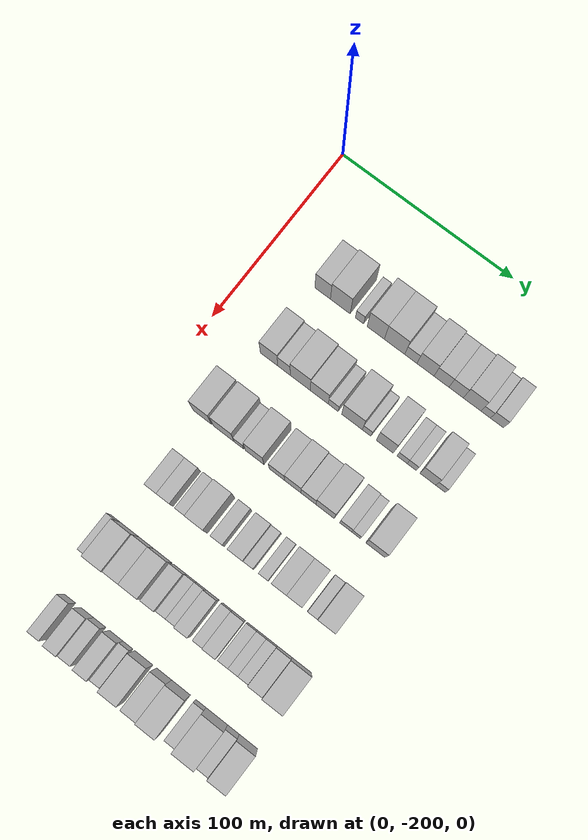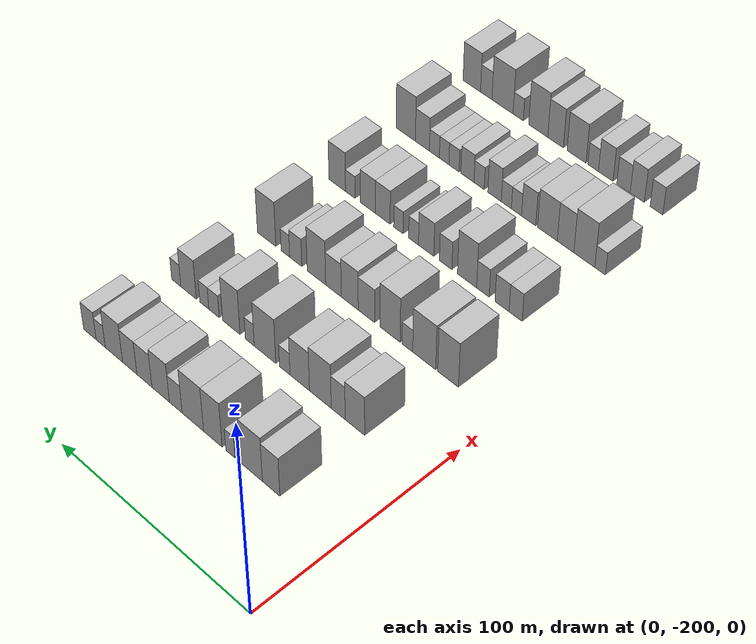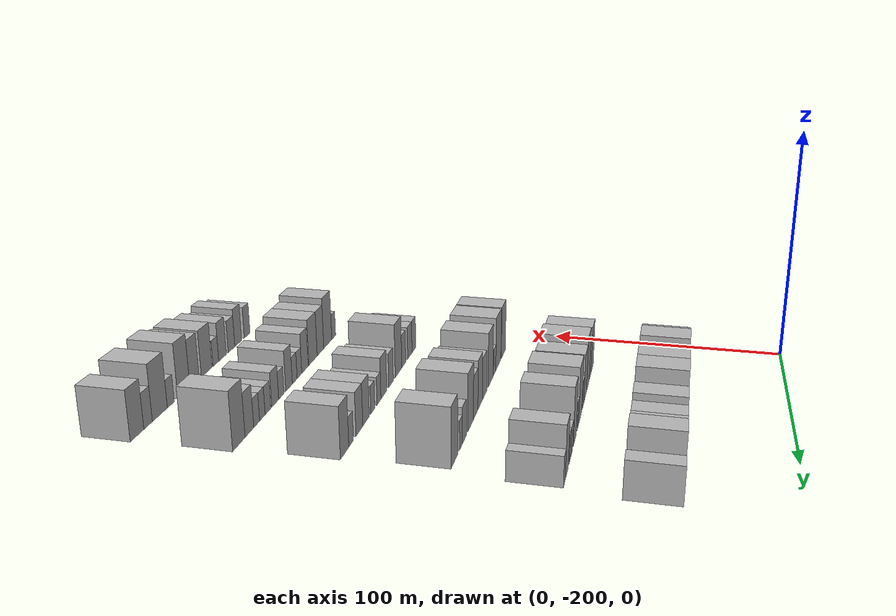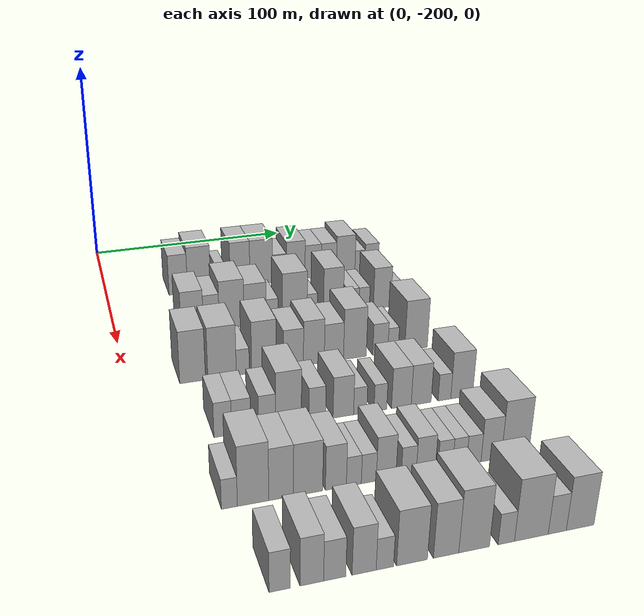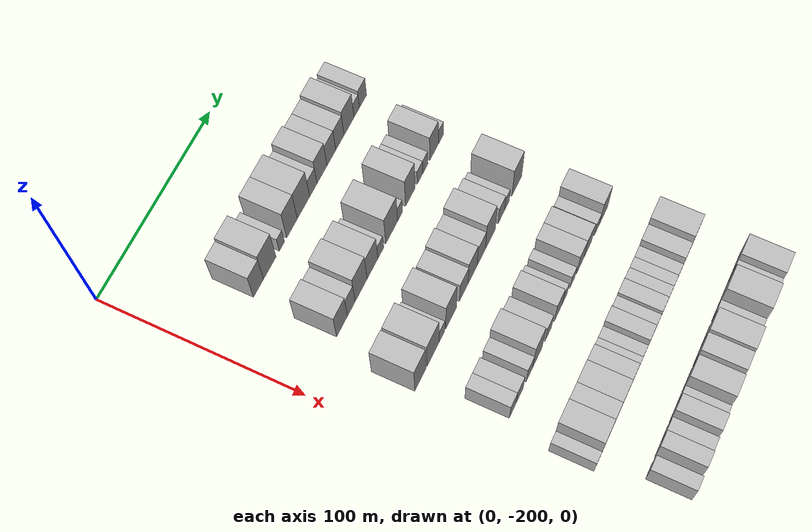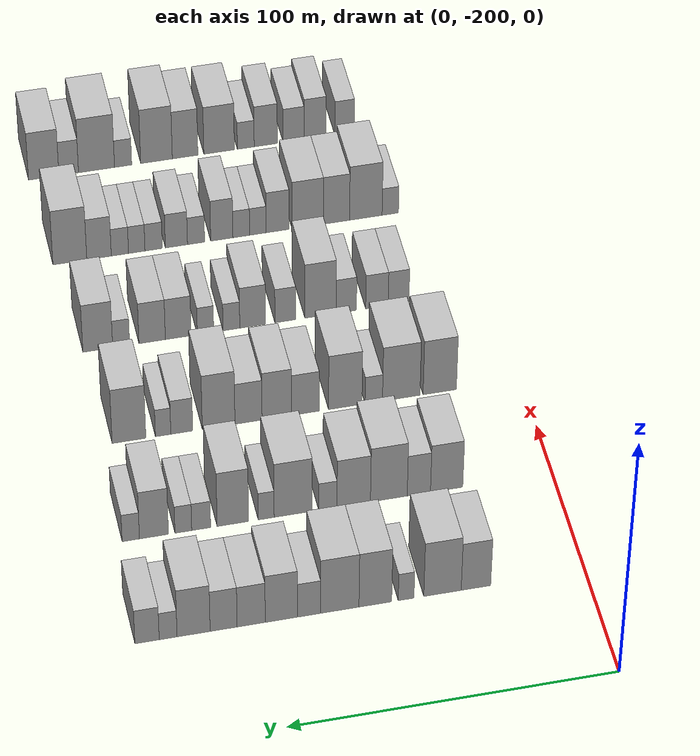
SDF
<sdf version="1.6">
 <world name="default">
  <model name="building_47">
   <static>1</static>
   <pose>50.0000 -166.2296 0 0.000000 0.000000 0.000000</pose>
   <link name="link">
    <pose>0 0 10.50 0 0 0</pose>
    <collision name="collision"><geometry><box><size>20.0000 9.0681 21.0000</size></box></geometry></collision>
    <visual name="visual">
     <cast_shadows>0</cast_shadows>
     <geometry><box><size>20.0000 9.0681 21.0000</size></box></geometry>
     <material>
      <script>
       <uri>model://HANNAS_wall/materials/scripts</uri>
       <uri>model://HANNAS_wall/materials/textures</uri>
       <name>vrc/HANNAS_wall</name>
      </script>
     </material>
    </visual>
   </link>
  </model>
  <model name="building_48">
   <static>1</static>
   <pose>50.0000 -155.9535 0 0.000000 0.000000 0.000000</pose>
   <link name="link">
    <pose>0 0 12.00 0 0 0</pose>
    <collision name="collision"><geometry><box><size>20.0000 11.4841 24.0000</size></box></geometry></collision>
    <visual name="visual">
     <cast_shadows>0</cast_shadows>
     <geometry><box><size>20.0000 11.4841 24.0000</size></box></geometry>
     <material>
      <script>
       <uri>model://HANNAS_wall/materials/scripts</uri>
       <uri>model://HANNAS_wall/materials/textures</uri>
       <name>vrc/HANNAS_wall</name>
      </script>
     </material>
    </visual>
   </link>
  </model>
  <model name="building_49">
   <static>1</static>
   <pose>50.0000 -144.7946 0 0.000000 0.000000 0.000000</pose>
   <link name="link">
    <pose>0 0 6.00 0 0 0</pose>
    <collision name="collision"><geometry><box><size>20.0000 4.8336 12.0000</size></box></geometry></collision>
    <visual name="visual">
     <cast_shadows>0</cast_shadows>
     <geometry><box><size>20.0000 4.8336 12.0000</size></box></geometry>
     <material>
      <script>
       <uri>model://HANNAS_wall/materials/scripts</uri>
       <uri>model://HANNAS_wall/materials/textures</uri>
       <name>vrc/HANNAS_wall</name>
      </script>
     </material>
    </visual>
   </link>
  </model>
  <model name="building_50">
   <static>1</static>
   <pose>50.0000 -135.3790 0 0.000000 0.000000 0.000000</pose>
   <link name="link">
    <pose>0 0 12.00 0 0 0</pose>
    <collision name="collision"><geometry><box><size>20.0000 9.9977 24.0000</size></box></geometry></collision>
    <visual name="visual">
     <cast_shadows>0</cast_shadows>
     <geometry><box><size>20.0000 9.9977 24.0000</size></box></geometry>
     <material>
      <script>
       <uri>model://HANNAS_wall/materials/scripts</uri>
       <uri>model://HANNAS_wall/materials/textures</uri>
       <name>vrc/HANNAS_wall</name>
      </script>
     </material>
    </visual>
   </link>
  </model>
  <model name="building_51">
   <static>1</static>
   <pose>50.0000 -124.5223 0 0.000000 0.000000 0.000000</pose>
   <link name="link">
    <pose>0 0 12.00 0 0 0</pose>
    <collision name="collision"><geometry><box><size>20.0000 11.7156 24.0000</size></box></geometry></collision>
    <visual name="visual">
     <cast_shadows>0</cast_shadows>
     <geometry><box><size>20.0000 11.7156 24.0000</size></box></geometry>
     <material>
      <script>
       <uri>model://HANNAS_wall/materials/scripts</uri>
       <uri>model://HANNAS_wall/materials/textures</uri>
       <name>vrc/HANNAS_wall</name>
      </script>
     </material>
    </visual>
   </link>
  </model>
  <model name="building_52">
   <static>1</static>
   <pose>50.0000 -115.1281 0 0.000000 0.000000 0.000000</pose>
   <link name="link">
    <pose>0 0 7.50 0 0 0</pose>
    <collision name="collision"><geometry><box><size>20.0000 7.0728 15.0000</size></box></geometry></collision>
    <visual name="visual">
     <cast_shadows>0</cast_shadows>
     <geometry><box><size>20.0000 7.0728 15.0000</size></box></geometry>
     <material>
      <script>
       <uri>model://HANNAS_wall/materials/scripts</uri>
       <uri>model://HANNAS_wall/materials/textures</uri>
       <name>vrc/HANNAS_wall</name>
      </script>
     </material>
    </visual>
   </link>
  </model>
  <model name="building_53">
   <static>1</static>
   <pose>50.0000 -106.7316 0 0.000000 0.000000 0.000000</pose>
   <link name="link">
    <pose>0 0 10.50 0 0 0</pose>
    <collision name="collision"><geometry><box><size>20.0000 9.7201 21.0000</size></box></geometry></collision>
    <visual name="visual">
     <cast_shadows>0</cast_shadows>
     <geometry><box><size>20.0000 9.7201 21.0000</size></box></geometry>
     <material>
      <script>
       <uri>model://HANNAS_wall/materials/scripts</uri>
       <uri>model://HANNAS_wall/materials/textures</uri>
       <name>vrc/HANNAS_wall</name>
      </script>
     </material>
    </visual>
   </link>
  </model>
  <model name="building_54">
   <static>1</static>
   <pose>50.0000 -97.6066 0 0.000000 0.000000 0.000000</pose>
   <link name="link">
    <pose>0 0 9.00 0 0 0</pose>
    <collision name="collision"><geometry><box><size>20.0000 8.5299 18.0000</size></box></geometry></collision>
    <visual name="visual">
     <cast_shadows>0</cast_shadows>
     <geometry><box><size>20.0000 8.5299 18.0000</size></box></geometry>
     <material>
      <script>
       <uri>model://HANNAS_wall/materials/scripts</uri>
       <uri>model://HANNAS_wall/materials/textures</uri>
       <name>vrc/HANNAS_wall</name>
      </script>
     </material>
    </visual>
   </link>
  </model>
  <model name="building_55">
   <static>1</static>
   <pose>50.0000 -89.2613 0 0.000000 0.000000 0.000000</pose>
   <link name="link">
    <pose>0 0 9.00 0 0 0</pose>
    <collision name="collision"><geometry><box><size>20.0000 8.1607 18.0000</size></box></geometry></collision>
    <visual name="visual">
     <cast_shadows>0</cast_shadows>
     <geometry><box><size>20.0000 8.1607 18.0000</size></box></geometry>
     <material>
      <script>
       <uri>model://HANNAS_wall/materials/scripts</uri>
       <uri>model://HANNAS_wall/materials/textures</uri>
       <name>vrc/HANNAS_wall</name>
      </script>
     </material>
    </visual>
   </link>
  </model>
  <model name="building_56">
   <static>1</static>
   <pose>50.0000 -80.1946 0 0.000000 0.000000 0.000000</pose>
   <link name="link">
    <pose>0 0 10.50 0 0 0</pose>
    <collision name="collision"><geometry><box><size>20.0000 9.9728 21.0000</size></box></geometry></collision>
    <visual name="visual">
     <cast_shadows>0</cast_shadows>
     <geometry><box><size>20.0000 9.9728 21.0000</size></box></geometry>
     <material>
      <script>
       <uri>model://HANNAS_wall/materials/scripts</uri>
       <uri>model://HANNAS_wall/materials/textures</uri>
       <name>vrc/HANNAS_wall</name>
      </script>
     </material>
    </visual>
   </link>
  </model>
  <model name="building_57">
   <static>1</static>
   <pose>50.0000 -72.5156 0 0.000000 0.000000 0.000000</pose>
   <link name="link">
    <pose>0 0 6.00 0 0 0</pose>
    <collision name="collision"><geometry><box><size>20.0000 5.3850 12.0000</size></box></geometry></collision>
    <visual name="visual">
     <cast_shadows>0</cast_shadows>
     <geometry><box><size>20.0000 5.3850 12.0000</size></box></geometry>
     <material>
      <script>
       <uri>model://HANNAS_wall/materials/scripts</uri>
       <uri>model://HANNAS_wall/materials/textures</uri>
       <name>vrc/HANNAS_wall</name>
      </script>
     </material>
    </visual>
   </link>
  </model>
  <model name="building_58">
   <static>1</static>
   <pose>50.0000 -66.1630 0 0.000000 0.000000 0.000000</pose>
   <link name="link">
    <pose>0 0 7.50 0 0 0</pose>
    <collision name="collision"><geometry><box><size>20.0000 7.3204 15.0000</size></box></geometry></collision>
    <visual name="visual">
     <cast_shadows>0</cast_shadows>
     <geometry><box><size>20.0000 7.3204 15.0000</size></box></geometry>
     <material>
      <script>
       <uri>model://HANNAS_wall/materials/scripts</uri>
       <uri>model://HANNAS_wall/materials/textures</uri>
       <name>vrc/HANNAS_wall</name>
      </script>
     </material>
    </visual>
   </link>
  </model>
  <model name="building_179">
   <static>1</static>
   <pose>90.0000 -166.6942 0 0.000000 0.000000 0.000000</pose>
   <link name="link">
    <pose>0 0 10.50 0 0 0</pose>
    <collision name="collision"><geometry><box><size>20.0000 10.1203 21.0000</size></box></geometry></collision>
    <visual name="visual">
     <cast_shadows>0</cast_shadows>
     <geometry><box><size>20.0000 10.1203 21.0000</size></box></geometry>
     <material>
      <script>
       <uri>model://HANNAS_wall/materials/scripts</uri>
       <uri>model://HANNAS_wall/materials/textures</uri>
       <name>vrc/HANNAS_wall</name>
      </script>
     </material>
    </visual>
   </link>
  </model>
  <model name="building_180">
   <static>1</static>
   <pose>90.0000 -157.9879 0 0.000000 0.000000 0.000000</pose>
   <link name="link">
    <pose>0 0 9.00 0 0 0</pose>
    <collision name="collision"><geometry><box><size>20.0000 7.2924 18.0000</size></box></geometry></collision>
    <visual name="visual">
     <cast_shadows>0</cast_shadows>
     <geometry><box><size>20.0000 7.2924 18.0000</size></box></geometry>
     <material>
      <script>
       <uri>model://HANNAS_wall/materials/scripts</uri>
       <uri>model://HANNAS_wall/materials/textures</uri>
       <name>vrc/HANNAS_wall</name>
      </script>
     </material>
    </visual>
   </link>
  </model>
  <model name="building_181">
   <static>1</static>
   <pose>90.0000 -148.5981 0 0.000000 0.000000 0.000000</pose>
   <link name="link">
    <pose>0 0 12.00 0 0 0</pose>
    <collision name="collision"><geometry><box><size>20.0000 11.4873 24.0000</size></box></geometry></collision>
    <visual name="visual">
     <cast_shadows>0</cast_shadows>
     <geometry><box><size>20.0000 11.4873 24.0000</size></box></geometry>
     <material>
      <script>
       <uri>model://HANNAS_wall/materials/scripts</uri>
       <uri>model://HANNAS_wall/materials/textures</uri>
       <name>vrc/HANNAS_wall</name>
      </script>
     </material>
    </visual>
   </link>
  </model>
  <model name="building_182">
   <static>1</static>
   <pose>90.0000 -137.6364 0 0.000000 0.000000 0.000000</pose>
   <link name="link">
    <pose>0 0 10.50 0 0 0</pose>
    <collision name="collision"><geometry><box><size>20.0000 10.4361 21.0000</size></box></geometry></collision>
    <visual name="visual">
     <cast_shadows>0</cast_shadows>
     <geometry><box><size>20.0000 10.4361 21.0000</size></box></geometry>
     <material>
      <script>
       <uri>model://HANNAS_wall/materials/scripts</uri>
       <uri>model://HANNAS_wall/materials/textures</uri>
       <name>vrc/HANNAS_wall</name>
      </script>
     </material>
    </visual>
   </link>
  </model>
  <model name="building_183">
   <static>1</static>
   <pose>90.0000 -129.5683 0 0.000000 0.000000 0.000000</pose>
   <link name="link">
    <pose>0 0 6.00 0 0 0</pose>
    <collision name="collision"><geometry><box><size>20.0000 5.7002 12.0000</size></box></geometry></collision>
    <visual name="visual">
     <cast_shadows>0</cast_shadows>
     <geometry><box><size>20.0000 5.7002 12.0000</size></box></geometry>
     <material>
      <script>
       <uri>model://HANNAS_wall/materials/scripts</uri>
       <uri>model://HANNAS_wall/materials/textures</uri>
       <name>vrc/HANNAS_wall</name>
      </script>
     </material>
    </visual>
   </link>
  </model>
  <model name="building_184">
   <static>1</static>
   <pose>90.0000 -118.8099 0 0.000000 0.000000 0.000000</pose>
   <link name="link">
    <pose>0 0 12.00 0 0 0</pose>
    <collision name="collision"><geometry><box><size>20.0000 11.8165 24.0000</size></box></geometry></collision>
    <visual name="visual">
     <cast_shadows>0</cast_shadows>
     <geometry><box><size>20.0000 11.8165 24.0000</size></box></geometry>
     <material>
      <script>
       <uri>model://HANNAS_wall/materials/scripts</uri>
       <uri>model://HANNAS_wall/materials/textures</uri>
       <name>vrc/HANNAS_wall</name>
      </script>
     </material>
    </visual>
   </link>
  </model>
  <model name="building_185">
   <static>1</static>
   <pose>90.0000 -110.4300 0 0.000000 0.000000 0.000000</pose>
   <link name="link">
    <pose>0 0 6.00 0 0 0</pose>
    <collision name="collision"><geometry><box><size>20.0000 4.9433 12.0000</size></box></geometry></collision>
    <visual name="visual">
     <cast_shadows>0</cast_shadows>
     <geometry><box><size>20.0000 4.9433 12.0000</size></box></geometry>
     <material>
      <script>
       <uri>model://HANNAS_wall/materials/scripts</uri>
       <uri>model://HANNAS_wall/materials/textures</uri>
       <name>vrc/HANNAS_wall</name>
      </script>
     </material>
    </visual>
   </link>
  </model>
  <model name="building_186">
   <static>1</static>
   <pose>90.0000 -100.1006 0 0.000000 0.000000 0.000000</pose>
   <link name="link">
    <pose>0 0 12.00 0 0 0</pose>
    <collision name="collision"><geometry><box><size>20.0000 9.7156 24.0000</size></box></geometry></collision>
    <visual name="visual">
     <cast_shadows>0</cast_shadows>
     <geometry><box><size>20.0000 9.7156 24.0000</size></box></geometry>
     <material>
      <script>
       <uri>model://HANNAS_wall/materials/scripts</uri>
       <uri>model://HANNAS_wall/materials/textures</uri>
       <name>vrc/HANNAS_wall</name>
      </script>
     </material>
    </visual>
   </link>
  </model>
  <model name="building_187">
   <static>1</static>
   <pose>90.0000 -90.3222 0 0.000000 0.000000 0.000000</pose>
   <link name="link">
    <pose>0 0 6.00 0 0 0</pose>
    <collision name="collision"><geometry><box><size>20.0000 5.8412 12.0000</size></box></geometry></collision>
    <visual name="visual">
     <cast_shadows>0</cast_shadows>
     <geometry><box><size>20.0000 5.8412 12.0000</size></box></geometry>
     <material>
      <script>
       <uri>model://HANNAS_wall/materials/scripts</uri>
       <uri>model://HANNAS_wall/materials/textures</uri>
       <name>vrc/HANNAS_wall</name>
      </script>
     </material>
    </visual>
   </link>
  </model>
  <model name="building_188">
   <static>1</static>
   <pose>90.0000 -84.8176 0 0.000000 0.000000 0.000000</pose>
   <link name="link">
    <pose>0 0 6.00 0 0 0</pose>
    <collision name="collision"><geometry><box><size>20.0000 5.1679 12.0000</size></box></geometry></collision>
    <visual name="visual">
     <cast_shadows>0</cast_shadows>
     <geometry><box><size>20.0000 5.1679 12.0000</size></box></geometry>
     <material>
      <script>
       <uri>model://HANNAS_wall/materials/scripts</uri>
       <uri>model://HANNAS_wall/materials/textures</uri>
       <name>vrc/HANNAS_wall</name>
      </script>
     </material>
    </visual>
   </link>
  </model>
  <model name="building_189">
   <static>1</static>
   <pose>90.0000 -75.7755 0 0.000000 0.000000 0.000000</pose>
   <link name="link">
    <pose>0 0 10.50 0 0 0</pose>
    <collision name="collision"><geometry><box><size>20.0000 8.9164 21.0000</size></box></geometry></collision>
    <visual name="visual">
     <cast_shadows>0</cast_shadows>
     <geometry><box><size>20.0000 8.9164 21.0000</size></box></geometry>
     <material>
      <script>
       <uri>model://HANNAS_wall/materials/scripts</uri>
       <uri>model://HANNAS_wall/materials/textures</uri>
       <name>vrc/HANNAS_wall</name>
      </script>
     </material>
    </visual>
   </link>
  </model>
  <model name="building_190">
   <static>1</static>
   <pose>90.0000 -68.6545 0 0.000000 0.000000 0.000000</pose>
   <link name="link">
    <pose>0 0 6.00 0 0 0</pose>
    <collision name="collision"><geometry><box><size>20.0000 5.3256 12.0000</size></box></geometry></collision>
    <visual name="visual">
     <cast_shadows>0</cast_shadows>
     <geometry><box><size>20.0000 5.3256 12.0000</size></box></geometry>
     <material>
      <script>
       <uri>model://HANNAS_wall/materials/scripts</uri>
       <uri>model://HANNAS_wall/materials/textures</uri>
       <name>vrc/HANNAS_wall</name>
      </script>
     </material>
    </visual>
   </link>
  </model>
  <model name="building_309">
   <static>1</static>
   <pose>130.0000 -173.9732 0 0.000000 0.000000 0.000000</pose>
   <link name="link">
    <pose>0 0 12.00 0 0 0</pose>
    <collision name="collision"><geometry><box><size>20.0000 10.6619 24.0000</size></box></geometry></collision>
    <visual name="visual">
     <cast_shadows>0</cast_shadows>
     <geometry><box><size>20.0000 10.6619 24.0000</size></box></geometry>
     <material>
      <script>
       <uri>model://HANNAS_wall/materials/scripts</uri>
       <uri>model://HANNAS_wall/materials/textures</uri>
       <name>vrc/HANNAS_wall</name>
      </script>
     </material>
    </visual>
   </link>
  </model>
  <model name="building_310">
   <static>1</static>
   <pose>130.0000 -161.6548 0 0.000000 0.000000 0.000000</pose>
   <link name="link">
    <pose>0 0 12.00 0 0 0</pose>
    <collision name="collision"><geometry><box><size>20.0000 11.9749 24.0000</size></box></geometry></collision>
    <visual name="visual">
     <cast_shadows>0</cast_shadows>
     <geometry><box><size>20.0000 11.9749 24.0000</size></box></geometry>
     <material>
      <script>
       <uri>model://HANNAS_wall/materials/scripts</uri>
       <uri>model://HANNAS_wall/materials/textures</uri>
       <name>vrc/HANNAS_wall</name>
      </script>
     </material>
    </visual>
   </link>
  </model>
  <model name="building_311">
   <static>1</static>
   <pose>130.0000 -152.8914 0 0.000000 0.000000 0.000000</pose>
   <link name="link">
    <pose>0 0 6.00 0 0 0</pose>
    <collision name="collision"><geometry><box><size>20.0000 5.5519 12.0000</size></box></geometry></collision>
    <visual name="visual">
     <cast_shadows>0</cast_shadows>
     <geometry><box><size>20.0000 5.5519 12.0000</size></box></geometry>
     <material>
      <script>
       <uri>model://HANNAS_wall/materials/scripts</uri>
       <uri>model://HANNAS_wall/materials/textures</uri>
       <name>vrc/HANNAS_wall</name>
      </script>
     </material>
    </visual>
   </link>
  </model>
  <model name="building_312">
   <static>1</static>
   <pose>130.0000 -143.7987 0 0.000000 0.000000 0.000000</pose>
   <link name="link">
    <pose>0 0 12.00 0 0 0</pose>
    <collision name="collision"><geometry><box><size>20.0000 10.6335 24.0000</size></box></geometry></collision>
    <visual name="visual">
     <cast_shadows>0</cast_shadows>
     <geometry><box><size>20.0000 10.6335 24.0000</size></box></geometry>
     <material>
      <script>
       <uri>model://HANNAS_wall/materials/scripts</uri>
       <uri>model://HANNAS_wall/materials/textures</uri>
       <name>vrc/HANNAS_wall</name>
      </script>
     </material>
    </visual>
   </link>
  </model>
  <model name="building_313">
   <static>1</static>
   <pose>130.0000 -131.0709 0 0.000000 0.000000 0.000000</pose>
   <link name="link">
    <pose>0 0 9.00 0 0 0</pose>
    <collision name="collision"><geometry><box><size>20.0000 8.8222 18.0000</size></box></geometry></collision>
    <visual name="visual">
     <cast_shadows>0</cast_shadows>
     <geometry><box><size>20.0000 8.8222 18.0000</size></box></geometry>
     <material>
      <script>
       <uri>model://HANNAS_wall/materials/scripts</uri>
       <uri>model://HANNAS_wall/materials/textures</uri>
       <name>vrc/HANNAS_wall</name>
      </script>
     </material>
    </visual>
   </link>
  </model>
  <model name="building_314">
   <static>1</static>
   <pose>130.0000 -122.0285 0 0.000000 0.000000 0.000000</pose>
   <link name="link">
    <pose>0 0 10.50 0 0 0</pose>
    <collision name="collision"><geometry><box><size>20.0000 9.2626 21.0000</size></box></geometry></collision>
    <visual name="visual">
     <cast_shadows>0</cast_shadows>
     <geometry><box><size>20.0000 9.2626 21.0000</size></box></geometry>
     <material>
      <script>
       <uri>model://HANNAS_wall/materials/scripts</uri>
       <uri>model://HANNAS_wall/materials/textures</uri>
       <name>vrc/HANNAS_wall</name>
      </script>
     </material>
    </visual>
   </link>
  </model>
  <model name="building_315">
   <static>1</static>
   <pose>130.0000 -113.1105 0 0.000000 0.000000 0.000000</pose>
   <link name="link">
    <pose>0 0 9.00 0 0 0</pose>
    <collision name="collision"><geometry><box><size>20.0000 8.5734 18.0000</size></box></geometry></collision>
    <visual name="visual">
     <cast_shadows>0</cast_shadows>
     <geometry><box><size>20.0000 8.5734 18.0000</size></box></geometry>
     <material>
      <script>
       <uri>model://HANNAS_wall/materials/scripts</uri>
       <uri>model://HANNAS_wall/materials/textures</uri>
       <name>vrc/HANNAS_wall</name>
      </script>
     </material>
    </visual>
   </link>
  </model>
  <model name="building_316">
   <static>1</static>
   <pose>130.0000 -103.6690 0 0.000000 0.000000 0.000000</pose>
   <link name="link">
    <pose>0 0 12.00 0 0 0</pose>
    <collision name="collision"><geometry><box><size>20.0000 10.3096 24.0000</size></box></geometry></collision>
    <visual name="visual">
     <cast_shadows>0</cast_shadows>
     <geometry><box><size>20.0000 10.3096 24.0000</size></box></geometry>
     <material>
      <script>
       <uri>model://HANNAS_wall/materials/scripts</uri>
       <uri>model://HANNAS_wall/materials/textures</uri>
       <name>vrc/HANNAS_wall</name>
      </script>
     </material>
    </visual>
   </link>
  </model>
  <model name="building_317">
   <static>1</static>
   <pose>130.0000 -92.0567 0 0.000000 0.000000 0.000000</pose>
   <link name="link">
    <pose>0 0 7.50 0 0 0</pose>
    <collision name="collision"><geometry><box><size>20.0000 6.9150 15.0000</size></box></geometry></collision>
    <visual name="visual">
     <cast_shadows>0</cast_shadows>
     <geometry><box><size>20.0000 6.9150 15.0000</size></box></geometry>
     <material>
      <script>
       <uri>model://HANNAS_wall/materials/scripts</uri>
       <uri>model://HANNAS_wall/materials/textures</uri>
       <name>vrc/HANNAS_wall</name>
      </script>
     </material>
    </visual>
   </link>
  </model>
  <model name="building_318">
   <static>1</static>
   <pose>130.0000 -86.1786 0 0.000000 0.000000 0.000000</pose>
   <link name="link">
    <pose>0 0 6.00 0 0 0</pose>
    <collision name="collision"><geometry><box><size>20.0000 4.8413 12.0000</size></box></geometry></collision>
    <visual name="visual">
     <cast_shadows>0</cast_shadows>
     <geometry><box><size>20.0000 4.8413 12.0000</size></box></geometry>
     <material>
      <script>
       <uri>model://HANNAS_wall/materials/scripts</uri>
       <uri>model://HANNAS_wall/materials/textures</uri>
       <name>vrc/HANNAS_wall</name>
      </script>
     </material>
    </visual>
   </link>
  </model>
  <model name="building_319">
   <static>1</static>
   <pose>130.0000 -75.4687 0 0.000000 0.000000 0.000000</pose>
   <link name="link">
    <pose>0 0 12.00 0 0 0</pose>
    <collision name="collision"><geometry><box><size>20.0000 10.5785 24.0000</size></box></geometry></collision>
    <visual name="visual">
     <cast_shadows>0</cast_shadows>
     <geometry><box><size>20.0000 10.5785 24.0000</size></box></geometry>
     <material>
      <script>
       <uri>model://HANNAS_wall/materials/scripts</uri>
       <uri>model://HANNAS_wall/materials/textures</uri>
       <name>vrc/HANNAS_wall</name>
      </script>
     </material>
    </visual>
   </link>
  </model>
  <model name="building_448">
   <static>1</static>
   <pose>170.0000 -169.9587 0 0.000000 0.000000 0.000000</pose>
   <link name="link">
    <pose>0 0 7.50 0 0 0</pose>
    <collision name="collision"><geometry><box><size>20.0000 6.7634 15.0000</size></box></geometry></collision>
    <visual name="visual">
     <cast_shadows>0</cast_shadows>
     <geometry><box><size>20.0000 6.7634 15.0000</size></box></geometry>
     <material>
      <script>
       <uri>model://HANNAS_wall/materials/scripts</uri>
       <uri>model://HANNAS_wall/materials/textures</uri>
       <name>vrc/HANNAS_wall</name>
      </script>
     </material>
    </visual>
   </link>
  </model>
  <model name="building_449">
   <static>1</static>
   <pose>170.0000 -162.9077 0 0.000000 0.000000 0.000000</pose>
   <link name="link">
    <pose>0 0 7.50 0 0 0</pose>
    <collision name="collision"><geometry><box><size>20.0000 7.3386 15.0000</size></box></geometry></collision>
    <visual name="visual">
     <cast_shadows>0</cast_shadows>
     <geometry><box><size>20.0000 7.3386 15.0000</size></box></geometry>
     <material>
      <script>
       <uri>model://HANNAS_wall/materials/scripts</uri>
       <uri>model://HANNAS_wall/materials/textures</uri>
       <name>vrc/HANNAS_wall</name>
      </script>
     </material>
    </visual>
   </link>
  </model>
  <model name="building_450">
   <static>1</static>
   <pose>170.0000 -152.9401 0 0.000000 0.000000 0.000000</pose>
   <link name="link">
    <pose>0 0 7.50 0 0 0</pose>
    <collision name="collision"><geometry><box><size>20.0000 6.5965 15.0000</size></box></geometry></collision>
    <visual name="visual">
     <cast_shadows>0</cast_shadows>
     <geometry><box><size>20.0000 6.5965 15.0000</size></box></geometry>
     <material>
      <script>
       <uri>model://HANNAS_wall/materials/scripts</uri>
       <uri>model://HANNAS_wall/materials/textures</uri>
       <name>vrc/HANNAS_wall</name>
      </script>
     </material>
    </visual>
   </link>
  </model>
  <model name="building_451">
   <static>1</static>
   <pose>170.0000 -144.5695 0 0.000000 0.000000 0.000000</pose>
   <link name="link">
    <pose>0 0 12.00 0 0 0</pose>
    <collision name="collision"><geometry><box><size>20.0000 10.1448 24.0000</size></box></geometry></collision>
    <visual name="visual">
     <cast_shadows>0</cast_shadows>
     <geometry><box><size>20.0000 10.1448 24.0000</size></box></geometry>
     <material>
      <script>
       <uri>model://HANNAS_wall/materials/scripts</uri>
       <uri>model://HANNAS_wall/materials/textures</uri>
       <name>vrc/HANNAS_wall</name>
      </script>
     </material>
    </visual>
   </link>
  </model>
  <model name="building_452">
   <static>1</static>
   <pose>170.0000 -133.1476 0 0.000000 0.000000 0.000000</pose>
   <link name="link">
    <pose>0 0 7.50 0 0 0</pose>
    <collision name="collision"><geometry><box><size>20.0000 6.6992 15.0000</size></box></geometry></collision>
    <visual name="visual">
     <cast_shadows>0</cast_shadows>
     <geometry><box><size>20.0000 6.6992 15.0000</size></box></geometry>
     <material>
      <script>
       <uri>model://HANNAS_wall/materials/scripts</uri>
       <uri>model://HANNAS_wall/materials/textures</uri>
       <name>vrc/HANNAS_wall</name>
      </script>
     </material>
    </visual>
   </link>
  </model>
  <model name="building_453">
   <static>1</static>
   <pose>170.0000 -122.6183 0 0.000000 0.000000 0.000000</pose>
   <link name="link">
    <pose>0 0 9.00 0 0 0</pose>
    <collision name="collision"><geometry><box><size>20.0000 8.3593 18.0000</size></box></geometry></collision>
    <visual name="visual">
     <cast_shadows>0</cast_shadows>
     <geometry><box><size>20.0000 8.3593 18.0000</size></box></geometry>
     <material>
      <script>
       <uri>model://HANNAS_wall/materials/scripts</uri>
       <uri>model://HANNAS_wall/materials/textures</uri>
       <name>vrc/HANNAS_wall</name>
      </script>
     </material>
    </visual>
   </link>
  </model>
  <model name="building_454">
   <static>1</static>
   <pose>170.0000 -115.7370 0 0.000000 0.000000 0.000000</pose>
   <link name="link">
    <pose>0 0 6.00 0 0 0</pose>
    <collision name="collision"><geometry><box><size>20.0000 5.4032 12.0000</size></box></geometry></collision>
    <visual name="visual">
     <cast_shadows>0</cast_shadows>
     <geometry><box><size>20.0000 5.4032 12.0000</size></box></geometry>
     <material>
      <script>
       <uri>model://HANNAS_wall/materials/scripts</uri>
       <uri>model://HANNAS_wall/materials/textures</uri>
       <name>vrc/HANNAS_wall</name>
      </script>
     </material>
    </visual>
   </link>
  </model>
  <model name="building_455">
   <static>1</static>
   <pose>170.0000 -107.3978 0 0.000000 0.000000 0.000000</pose>
   <link name="link">
    <pose>0 0 6.00 0 0 0</pose>
    <collision name="collision"><geometry><box><size>20.0000 5.2753 12.0000</size></box></geometry></collision>
    <visual name="visual">
     <cast_shadows>0</cast_shadows>
     <geometry><box><size>20.0000 5.2753 12.0000</size></box></geometry>
     <material>
      <script>
       <uri>model://HANNAS_wall/materials/scripts</uri>
       <uri>model://HANNAS_wall/materials/textures</uri>
       <name>vrc/HANNAS_wall</name>
      </script>
     </material>
    </visual>
   </link>
  </model>
  <model name="building_456">
   <static>1</static>
   <pose>170.0000 -98.6257 0 0.000000 0.000000 0.000000</pose>
   <link name="link">
    <pose>0 0 9.00 0 0 0</pose>
    <collision name="collision"><geometry><box><size>20.0000 8.2689 18.0000</size></box></geometry></collision>
    <visual name="visual">
     <cast_shadows>0</cast_shadows>
     <geometry><box><size>20.0000 8.2689 18.0000</size></box></geometry>
     <material>
      <script>
       <uri>model://HANNAS_wall/materials/scripts</uri>
       <uri>model://HANNAS_wall/materials/textures</uri>
       <name>vrc/HANNAS_wall</name>
      </script>
     </material>
    </visual>
   </link>
  </model>
  <model name="building_457">
   <static>1</static>
   <pose>170.0000 -90.2598 0 0.000000 0.000000 0.000000</pose>
   <link name="link">
    <pose>0 0 9.00 0 0 0</pose>
    <collision name="collision"><geometry><box><size>20.0000 8.4630 18.0000</size></box></geometry></collision>
    <visual name="visual">
     <cast_shadows>0</cast_shadows>
     <geometry><box><size>20.0000 8.4630 18.0000</size></box></geometry>
     <material>
      <script>
       <uri>model://HANNAS_wall/materials/scripts</uri>
       <uri>model://HANNAS_wall/materials/textures</uri>
       <name>vrc/HANNAS_wall</name>
      </script>
     </material>
    </visual>
   </link>
  </model>
  <model name="building_458">
   <static>1</static>
   <pose>170.0000 -80.3119 0 0.000000 0.000000 0.000000</pose>
   <link name="link">
    <pose>0 0 6.00 0 0 0</pose>
    <collision name="collision"><geometry><box><size>20.0000 5.4328 12.0000</size></box></geometry></collision>
    <visual name="visual">
     <cast_shadows>0</cast_shadows>
     <geometry><box><size>20.0000 5.4328 12.0000</size></box></geometry>
     <material>
      <script>
       <uri>model://HANNAS_wall/materials/scripts</uri>
       <uri>model://HANNAS_wall/materials/textures</uri>
       <name>vrc/HANNAS_wall</name>
      </script>
     </material>
    </visual>
   </link>
  </model>
  <model name="building_459">
   <static>1</static>
   <pose>170.0000 -72.8380 0 0.000000 0.000000 0.000000</pose>
   <link name="link">
    <pose>0 0 10.50 0 0 0</pose>
    <collision name="collision"><geometry><box><size>20.0000 9.5152 21.0000</size></box></geometry></collision>
    <visual name="visual">
     <cast_shadows>0</cast_shadows>
     <geometry><box><size>20.0000 9.5152 21.0000</size></box></geometry>
     <material>
      <script>
       <uri>model://HANNAS_wall/materials/scripts</uri>
       <uri>model://HANNAS_wall/materials/textures</uri>
       <name>vrc/HANNAS_wall</name>
      </script>
     </material>
    </visual>
   </link>
  </model>
  <model name="building_588">
   <static>1</static>
   <pose>210.0000 -176.3589 0 0.000000 0.000000 0.000000</pose>
   <link name="link">
    <pose>0 0 6.00 0 0 0</pose>
    <collision name="collision"><geometry><box><size>20.0000 5.4454 12.0000</size></box></geometry></collision>
    <visual name="visual">
     <cast_shadows>0</cast_shadows>
     <geometry><box><size>20.0000 5.4454 12.0000</size></box></geometry>
     <material>
      <script>
       <uri>model://HANNAS_wall/materials/scripts</uri>
       <uri>model://HANNAS_wall/materials/textures</uri>
       <name>vrc/HANNAS_wall</name>
      </script>
     </material>
    </visual>
   </link>
  </model>
  <model name="building_589">
   <static>1</static>
   <pose>210.0000 -168.2329 0 0.000000 0.000000 0.000000</pose>
   <link name="link">
    <pose>0 0 12.00 0 0 0</pose>
    <collision name="collision"><geometry><box><size>20.0000 10.8067 24.0000</size></box></geometry></collision>
    <visual name="visual">
     <cast_shadows>0</cast_shadows>
     <geometry><box><size>20.0000 10.8067 24.0000</size></box></geometry>
     <material>
      <script>
       <uri>model://HANNAS_wall/materials/scripts</uri>
       <uri>model://HANNAS_wall/materials/textures</uri>
       <name>vrc/HANNAS_wall</name>
      </script>
     </material>
    </visual>
   </link>
  </model>
  <model name="building_590">
   <static>1</static>
   <pose>210.0000 -158.5000 0 0.000000 0.000000 0.000000</pose>
   <link name="link">
    <pose>0 0 10.50 0 0 0</pose>
    <collision name="collision"><geometry><box><size>20.0000 8.6591 21.0000</size></box></geometry></collision>
    <visual name="visual">
     <cast_shadows>0</cast_shadows>
     <geometry><box><size>20.0000 8.6591 21.0000</size></box></geometry>
     <material>
      <script>
       <uri>model://HANNAS_wall/materials/scripts</uri>
       <uri>model://HANNAS_wall/materials/textures</uri>
       <name>vrc/HANNAS_wall</name>
      </script>
     </material>
    </visual>
   </link>
  </model>
  <model name="building_591">
   <static>1</static>
   <pose>210.0000 -148.9795 0 0.000000 0.000000 0.000000</pose>
   <link name="link">
    <pose>0 0 10.50 0 0 0</pose>
    <collision name="collision"><geometry><box><size>20.0000 10.3818 21.0000</size></box></geometry></collision>
    <visual name="visual">
     <cast_shadows>0</cast_shadows>
     <geometry><box><size>20.0000 10.3818 21.0000</size></box></geometry>
     <material>
      <script>
       <uri>model://HANNAS_wall/materials/scripts</uri>
       <uri>model://HANNAS_wall/materials/textures</uri>
       <name>vrc/HANNAS_wall</name>
      </script>
     </material>
    </visual>
   </link>
  </model>
  <model name="building_592">
   <static>1</static>
   <pose>210.0000 -139.0076 0 0.000000 0.000000 0.000000</pose>
   <link name="link">
    <pose>0 0 9.00 0 0 0</pose>
    <collision name="collision"><geometry><box><size>20.0000 7.5620 18.0000</size></box></geometry></collision>
    <visual name="visual">
     <cast_shadows>0</cast_shadows>
     <geometry><box><size>20.0000 7.5620 18.0000</size></box></geometry>
     <material>
      <script>
       <uri>model://HANNAS_wall/materials/scripts</uri>
       <uri>model://HANNAS_wall/materials/textures</uri>
       <name>vrc/HANNAS_wall</name>
      </script>
     </material>
    </visual>
   </link>
  </model>
  <model name="building_593">
   <static>1</static>
   <pose>210.0000 -132.4989 0 0.000000 0.000000 0.000000</pose>
   <link name="link">
    <pose>0 0 6.00 0 0 0</pose>
    <collision name="collision"><geometry><box><size>20.0000 5.4554 12.0000</size></box></geometry></collision>
    <visual name="visual">
     <cast_shadows>0</cast_shadows>
     <geometry><box><size>20.0000 5.4554 12.0000</size></box></geometry>
     <material>
      <script>
       <uri>model://HANNAS_wall/materials/scripts</uri>
       <uri>model://HANNAS_wall/materials/textures</uri>
       <name>vrc/HANNAS_wall</name>
      </script>
     </material>
    </visual>
   </link>
  </model>
  <model name="building_594">
   <static>1</static>
   <pose>210.0000 -127.0244 0 0.000000 0.000000 0.000000</pose>
   <link name="link">
    <pose>0 0 6.00 0 0 0</pose>
    <collision name="collision"><geometry><box><size>20.0000 5.4935 12.0000</size></box></geometry></collision>
    <visual name="visual">
     <cast_shadows>0</cast_shadows>
     <geometry><box><size>20.0000 5.4935 12.0000</size></box></geometry>
     <material>
      <script>
       <uri>model://HANNAS_wall/materials/scripts</uri>
       <uri>model://HANNAS_wall/materials/textures</uri>
       <name>vrc/HANNAS_wall</name>
      </script>
     </material>
    </visual>
   </link>
  </model>
  <model name="building_595">
   <static>1</static>
   <pose>210.0000 -120.6256 0 0.000000 0.000000 0.000000</pose>
   <link name="link">
    <pose>0 0 9.00 0 0 0</pose>
    <collision name="collision"><geometry><box><size>20.0000 7.3041 18.0000</size></box></geometry></collision>
    <visual name="visual">
     <cast_shadows>0</cast_shadows>
     <geometry><box><size>20.0000 7.3041 18.0000</size></box></geometry>
     <material>
      <script>
       <uri>model://HANNAS_wall/materials/scripts</uri>
       <uri>model://HANNAS_wall/materials/textures</uri>
       <name>vrc/HANNAS_wall</name>
      </script>
     </material>
    </visual>
   </link>
  </model>
  <model name="building_596">
   <static>1</static>
   <pose>210.0000 -112.1581 0 0.000000 0.000000 0.000000</pose>
   <link name="link">
    <pose>0 0 6.00 0 0 0</pose>
    <collision name="collision"><geometry><box><size>20.0000 5.6309 12.0000</size></box></geometry></collision>
    <visual name="visual">
     <cast_shadows>0</cast_shadows>
     <geometry><box><size>20.0000 5.6309 12.0000</size></box></geometry>
     <material>
      <script>
       <uri>model://HANNAS_wall/materials/scripts</uri>
       <uri>model://HANNAS_wall/materials/textures</uri>
       <name>vrc/HANNAS_wall</name>
      </script>
     </material>
    </visual>
   </link>
  </model>
  <model name="building_597">
   <static>1</static>
   <pose>210.0000 -105.7231 0 0.000000 0.000000 0.000000</pose>
   <link name="link">
    <pose>0 0 7.50 0 0 0</pose>
    <collision name="collision"><geometry><box><size>20.0000 7.2392 15.0000</size></box></geometry></collision>
    <visual name="visual">
     <cast_shadows>0</cast_shadows>
     <geometry><box><size>20.0000 7.2392 15.0000</size></box></geometry>
     <material>
      <script>
       <uri>model://HANNAS_wall/materials/scripts</uri>
       <uri>model://HANNAS_wall/materials/textures</uri>
       <name>vrc/HANNAS_wall</name>
      </script>
     </material>
    </visual>
   </link>
  </model>
  <model name="building_598">
   <static>1</static>
   <pose>210.0000 -98.2608 0 0.000000 0.000000 0.000000</pose>
   <link name="link">
    <pose>0 0 6.00 0 0 0</pose>
    <collision name="collision"><geometry><box><size>20.0000 5.6854 12.0000</size></box></geometry></collision>
    <visual name="visual">
     <cast_shadows>0</cast_shadows>
     <geometry><box><size>20.0000 5.6854 12.0000</size></box></geometry>
     <material>
      <script>
       <uri>model://HANNAS_wall/materials/scripts</uri>
       <uri>model://HANNAS_wall/materials/textures</uri>
       <name>vrc/HANNAS_wall</name>
      </script>
     </material>
    </visual>
   </link>
  </model>
  <model name="building_599">
   <static>1</static>
   <pose>210.0000 -92.7265 0 0.000000 0.000000 0.000000</pose>
   <link name="link">
    <pose>0 0 6.00 0 0 0</pose>
    <collision name="collision"><geometry><box><size>20.0000 5.3833 12.0000</size></box></geometry></collision>
    <visual name="visual">
     <cast_shadows>0</cast_shadows>
     <geometry><box><size>20.0000 5.3833 12.0000</size></box></geometry>
     <material>
      <script>
       <uri>model://HANNAS_wall/materials/scripts</uri>
       <uri>model://HANNAS_wall/materials/textures</uri>
       <name>vrc/HANNAS_wall</name>
      </script>
     </material>
    </visual>
   </link>
  </model>
  <model name="building_600">
   <static>1</static>
   <pose>210.0000 -87.2190 0 0.000000 0.000000 0.000000</pose>
   <link name="link">
    <pose>0 0 6.00 0 0 0</pose>
    <collision name="collision"><geometry><box><size>20.0000 5.6316 12.0000</size></box></geometry></collision>
    <visual name="visual">
     <cast_shadows>0</cast_shadows>
     <geometry><box><size>20.0000 5.6316 12.0000</size></box></geometry>
     <material>
      <script>
       <uri>model://HANNAS_wall/materials/scripts</uri>
       <uri>model://HANNAS_wall/materials/textures</uri>
       <name>vrc/HANNAS_wall</name>
      </script>
     </material>
    </visual>
   </link>
  </model>
  <model name="building_601">
   <static>1</static>
   <pose>210.0000 -80.4062 0 0.000000 0.000000 0.000000</pose>
   <link name="link">
    <pose>0 0 9.00 0 0 0</pose>
    <collision name="collision"><geometry><box><size>20.0000 7.9939 18.0000</size></box></geometry></collision>
    <visual name="visual">
     <cast_shadows>0</cast_shadows>
     <geometry><box><size>20.0000 7.9939 18.0000</size></box></geometry>
     <material>
      <script>
       <uri>model://HANNAS_wall/materials/scripts</uri>
       <uri>model://HANNAS_wall/materials/textures</uri>
       <name>vrc/HANNAS_wall</name>
      </script>
     </material>
    </visual>
   </link>
  </model>
  <model name="building_602">
   <static>1</static>
   <pose>210.0000 -70.8955 0 0.000000 0.000000 0.000000</pose>
   <link name="link">
    <pose>0 0 12.00 0 0 0</pose>
    <collision name="collision"><geometry><box><size>20.0000 11.0276 24.0000</size></box></geometry></collision>
    <visual name="visual">
     <cast_shadows>0</cast_shadows>
     <geometry><box><size>20.0000 11.0276 24.0000</size></box></geometry>
     <material>
      <script>
       <uri>model://HANNAS_wall/materials/scripts</uri>
       <uri>model://HANNAS_wall/materials/textures</uri>
       <name>vrc/HANNAS_wall</name>
      </script>
     </material>
    </visual>
   </link>
  </model>
  <model name="building_725">
   <static>1</static>
   <pose>250.0000 -169.9595 0 0.000000 0.000000 0.000000</pose>
   <link name="link">
    <pose>0 0 7.50 0 0 0</pose>
    <collision name="collision"><geometry><box><size>20.0000 6.5660 15.0000</size></box></geometry></collision>
    <visual name="visual">
     <cast_shadows>0</cast_shadows>
     <geometry><box><size>20.0000 6.5660 15.0000</size></box></geometry>
     <material>
      <script>
       <uri>model://HANNAS_wall/materials/scripts</uri>
       <uri>model://HANNAS_wall/materials/textures</uri>
       <name>vrc/HANNAS_wall</name>
      </script>
     </material>
    </visual>
   </link>
  </model>
  <model name="building_726">
   <static>1</static>
   <pose>250.0000 -159.9865 0 0.000000 0.000000 0.000000</pose>
   <link name="link">
    <pose>0 0 9.00 0 0 0</pose>
    <collision name="collision"><geometry><box><size>20.0000 7.3801 18.0000</size></box></geometry></collision>
    <visual name="visual">
     <cast_shadows>0</cast_shadows>
     <geometry><box><size>20.0000 7.3801 18.0000</size></box></geometry>
     <material>
      <script>
       <uri>model://HANNAS_wall/materials/scripts</uri>
       <uri>model://HANNAS_wall/materials/textures</uri>
       <name>vrc/HANNAS_wall</name>
      </script>
     </material>
    </visual>
   </link>
  </model>
  <model name="building_727">
   <static>1</static>
   <pose>250.0000 -152.7778 0 0.000000 0.000000 0.000000</pose>
   <link name="link">
    <pose>0 0 7.50 0 0 0</pose>
    <collision name="collision"><geometry><box><size>20.0000 7.0373 15.0000</size></box></geometry></collision>
    <visual name="visual">
     <cast_shadows>0</cast_shadows>
     <geometry><box><size>20.0000 7.0373 15.0000</size></box></geometry>
     <material>
      <script>
       <uri>model://HANNAS_wall/materials/scripts</uri>
       <uri>model://HANNAS_wall/materials/textures</uri>
       <name>vrc/HANNAS_wall</name>
      </script>
     </material>
    </visual>
   </link>
  </model>
  <model name="building_728">
   <static>1</static>
   <pose>250.0000 -143.3725 0 0.000000 0.000000 0.000000</pose>
   <link name="link">
    <pose>0 0 9.00 0 0 0</pose>
    <collision name="collision"><geometry><box><size>20.0000 7.7733 18.0000</size></box></geometry></collision>
    <visual name="visual">
     <cast_shadows>0</cast_shadows>
     <geometry><box><size>20.0000 7.7733 18.0000</size></box></geometry>
     <material>
      <script>
       <uri>model://HANNAS_wall/materials/scripts</uri>
       <uri>model://HANNAS_wall/materials/textures</uri>
       <name>vrc/HANNAS_wall</name>
      </script>
     </material>
    </visual>
   </link>
  </model>
  <model name="building_729">
   <static>1</static>
   <pose>250.0000 -136.6540 0 0.000000 0.000000 0.000000</pose>
   <link name="link">
    <pose>0 0 6.00 0 0 0</pose>
    <collision name="collision"><geometry><box><size>20.0000 5.6638 12.0000</size></box></geometry></collision>
    <visual name="visual">
     <cast_shadows>0</cast_shadows>
     <geometry><box><size>20.0000 5.6638 12.0000</size></box></geometry>
     <material>
      <script>
       <uri>model://HANNAS_wall/materials/scripts</uri>
       <uri>model://HANNAS_wall/materials/textures</uri>
       <name>vrc/HANNAS_wall</name>
      </script>
     </material>
    </visual>
   </link>
  </model>
  <model name="building_730">
   <static>1</static>
   <pose>250.0000 -127.7025 0 0.000000 0.000000 0.000000</pose>
   <link name="link">
    <pose>0 0 10.50 0 0 0</pose>
    <collision name="collision"><geometry><box><size>20.0000 10.2391 21.0000</size></box></geometry></collision>
    <visual name="visual">
     <cast_shadows>0</cast_shadows>
     <geometry><box><size>20.0000 10.2391 21.0000</size></box></geometry>
     <material>
      <script>
       <uri>model://HANNAS_wall/materials/scripts</uri>
       <uri>model://HANNAS_wall/materials/textures</uri>
       <name>vrc/HANNAS_wall</name>
      </script>
     </material>
    </visual>
   </link>
  </model>
  <model name="building_731">
   <static>1</static>
   <pose>250.0000 -116.3056 0 0.000000 0.000000 0.000000</pose>
   <link name="link">
    <pose>0 0 10.50 0 0 0</pose>
    <collision name="collision"><geometry><box><size>20.0000 8.5548 21.0000</size></box></geometry></collision>
    <visual name="visual">
     <cast_shadows>0</cast_shadows>
     <geometry><box><size>20.0000 8.5548 21.0000</size></box></geometry>
     <material>
      <script>
       <uri>model://HANNAS_wall/materials/scripts</uri>
       <uri>model://HANNAS_wall/materials/textures</uri>
       <name>vrc/HANNAS_wall</name>
      </script>
     </material>
    </visual>
   </link>
  </model>
  <model name="building_732">
   <static>1</static>
   <pose>250.0000 -106.7430 0 0.000000 0.000000 0.000000</pose>
   <link name="link">
    <pose>0 0 12.00 0 0 0</pose>
    <collision name="collision"><geometry><box><size>20.0000 10.5705 24.0000</size></box></geometry></collision>
    <visual name="visual">
     <cast_shadows>0</cast_shadows>
     <geometry><box><size>20.0000 10.5705 24.0000</size></box></geometry>
     <material>
      <script>
       <uri>model://HANNAS_wall/materials/scripts</uri>
       <uri>model://HANNAS_wall/materials/textures</uri>
       <name>vrc/HANNAS_wall</name>
      </script>
     </material>
    </visual>
   </link>
  </model>
  <model name="building_733">
   <static>1</static>
   <pose>250.0000 -95.5922 0 0.000000 0.000000 0.000000</pose>
   <link name="link">
    <pose>0 0 6.00 0 0 0</pose>
    <collision name="collision"><geometry><box><size>20.0000 5.7311 12.0000</size></box></geometry></collision>
    <visual name="visual">
     <cast_shadows>0</cast_shadows>
     <geometry><box><size>20.0000 5.7311 12.0000</size></box></geometry>
     <material>
      <script>
       <uri>model://HANNAS_wall/materials/scripts</uri>
       <uri>model://HANNAS_wall/materials/textures</uri>
       <name>vrc/HANNAS_wall</name>
      </script>
     </material>
    </visual>
   </link>
  </model>
  <model name="building_734">
   <static>1</static>
   <pose>250.0000 -86.7372 0 0.000000 0.000000 0.000000</pose>
   <link name="link">
    <pose>0 0 12.00 0 0 0</pose>
    <collision name="collision"><geometry><box><size>20.0000 11.9789 24.0000</size></box></geometry></collision>
    <visual name="visual">
     <cast_shadows>0</cast_shadows>
     <geometry><box><size>20.0000 11.9789 24.0000</size></box></geometry>
     <material>
      <script>
       <uri>model://HANNAS_wall/materials/scripts</uri>
       <uri>model://HANNAS_wall/materials/textures</uri>
       <name>vrc/HANNAS_wall</name>
      </script>
     </material>
    </visual>
   </link>
  </model>
  <model name="building_735">
   <static>1</static>
   <pose>250.0000 -77.4880 0 0.000000 0.000000 0.000000</pose>
   <link name="link">
    <pose>0 0 7.50 0 0 0</pose>
    <collision name="collision"><geometry><box><size>20.0000 6.5194 15.0000</size></box></geometry></collision>
    <visual name="visual">
     <cast_shadows>0</cast_shadows>
     <geometry><box><size>20.0000 6.5194 15.0000</size></box></geometry>
     <material>
      <script>
       <uri>model://HANNAS_wall/materials/scripts</uri>
       <uri>model://HANNAS_wall/materials/textures</uri>
       <name>vrc/HANNAS_wall</name>
      </script>
     </material>
    </visual>
   </link>
  </model>
  <model name="building_736">
   <static>1</static>
   <pose>250.0000 -69.1881 0 0.000000 0.000000 0.000000</pose>
   <link name="link">
    <pose>0 0 10.50 0 0 0</pose>
    <collision name="collision"><geometry><box><size>20.0000 10.0805 21.0000</size></box></geometry></collision>
    <visual name="visual">
     <cast_shadows>0</cast_shadows>
     <geometry><box><size>20.0000 10.0805 21.0000</size></box></geometry>
     <material>
      <script>
       <uri>model://HANNAS_wall/materials/scripts</uri>
       <uri>model://HANNAS_wall/materials/textures</uri>
       <name>vrc/HANNAS_wall</name>
      </script>
     </material>
    </visual>
   </link>
  </model>
 </world>
</sdf>
